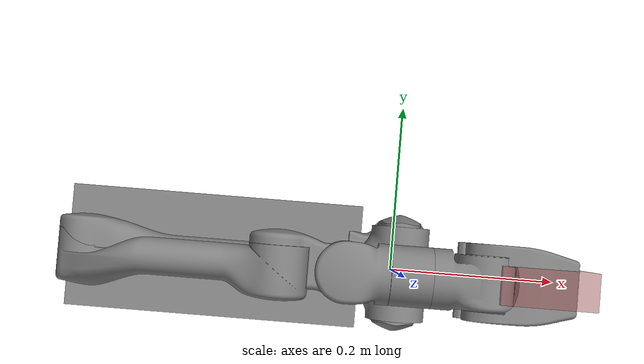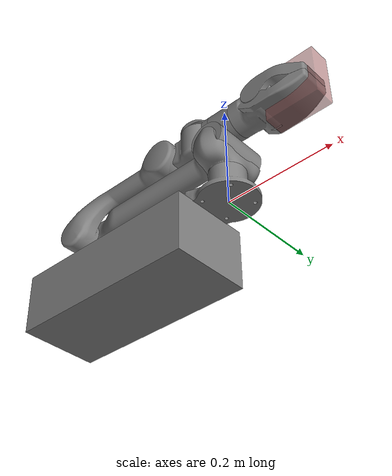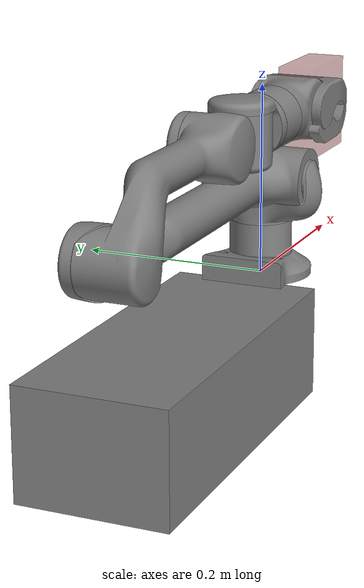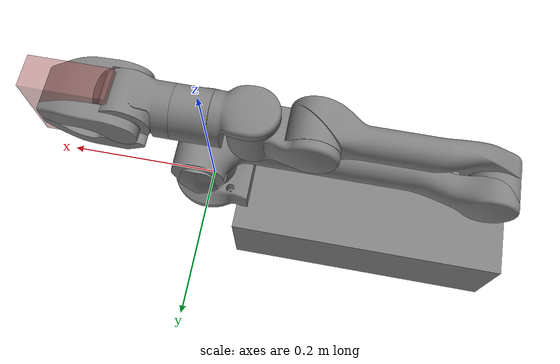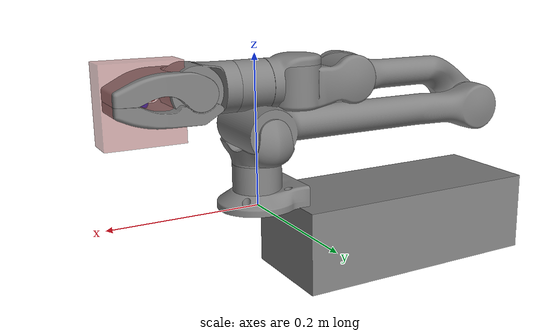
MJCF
<mujoco model="z1 scene">
  <include file="z1_floating.xml"/>

  <statistic center="0 0 0.1" extent="0.6"/>

  <visual>
    <headlight diffuse="0.6 0.6 0.6" ambient="0.3 0.3 0.3" specular="0 0 0"/>
    <rgba haze="0.15 0.25 0.35 1"/>
    <global azimuth="120" elevation="-20"/>
  </visual>

  <asset>
    <texture type="skybox" builtin="gradient" rgb1="0.3 0.5 0.7" rgb2="0 0 0" width="512" height="3072"/>
    <texture type="2d" name="groundplane" builtin="checker" mark="edge" rgb1="0.2 0.3 0.4" rgb2="0.1 0.2 0.3"
      markrgb="0.8 0.8 0.8" width="300" height="300"/>
    <material name="groundplane" texture="groundplane" texuniform="true" texrepeat="5 5" reflectance="0.2"/>
  </asset>

  <worldbody>
    <light pos="0 0 1.5" dir="0 0 -1" directional="true"/>

    <body name="target" pos="0.15 0. 0.15" quat="-0.5 0.5 0.5 0.5" mocap="true">
      <geom type="box" size=".05 .05 .02" contype="0" conaffinity="0" rgba=".6 .3 .3 .5"/>
      <site type="sphere" size="0.01" rgba="0 0 1 1" group="1"/>
    </body>

  </worldbody>
</mujoco>

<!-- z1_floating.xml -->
<mujoco model="z1">
  <compiler angle="radian" meshdir="assets"/>

  <option integrator="implicitfast"/>

  <default>
    <default class="z1">
      <joint damping="1" frictionloss="1"/>
      <general biastype="affine" gainprm="1000" biasprm="0 -1000 -100" forcerange="-30 30"/>
      <default class="visual">
        <geom type="mesh" group="2" contype="0" conaffinity="0"/>
      </default>
      <default class="collision">
        <geom type="cylinder" group="3" mass="0" density="0"/>
        <default class="z1_gripper_stator_collision">
          <geom pos="0.051 0 0" type="mesh"/>
        </default>
        <default class="z1_gripper_stator_pad_collision_1">
          <geom type="box" size="0.014 0.015 0.004" pos="0.186 -0.015 -0.0125"/>
        </default>
        <default class="z1_gripper_stator_pad_collision_2">
          <geom type="box" size="0.014 0.015 0.004" pos="0.186 0.015 -0.0125"/>
        </default>
        <default class="z1_gripper_mover_collision">
          <geom type="mesh"/>
        </default>
        <default class="z1_gripper_mover_pad_collision_1">
          <geom type="box" size="0.014 0.015 0.004" pos="0.086 -0.015 -0.0055"/>
        </default>
        <default class="z1_gripper_mover_pad_collision_2">
          <geom type="box" size="0.014 0.015 0.004" pos="0.086 0.015 -0.0055"/>
        </default>
      </default>
    </default>
  </default>

  <asset>
    <mesh file="z1_Link00.stl"/>
    <mesh file="z1_Link01.stl"/>
    <mesh file="z1_Link02.stl"/>
    <mesh file="z1_Link03.stl"/>
    <mesh file="z1_Link04.stl"/>
    <mesh file="z1_Link05.stl"/>
    <mesh file="z1_Link06.stl"/>
    <mesh file="z1_GripperStator.stl"/>
    <mesh file="z1_GripperStator_col_1.stl"/>
    <mesh file="z1_GripperStator_col_2.stl"/>
    <mesh file="z1_GripperStator_col_3.stl"/>
    <mesh file="z1_GripperStator_col_4.stl"/>
    <mesh file="z1_GripperStator_col_5.stl"/>
    <mesh file="z1_GripperStator_col_6.stl"/>
    <mesh file="z1_GripperMover.stl"/>
    <mesh file="z1_GripperMover_col_1.stl"/>
    <mesh file="z1_GripperMover_col_2.stl"/>
    <mesh file="z1_GripperMover_col_3.stl"/>
    <mesh file="z1_GripperMover_col_4.stl"/>
    <mesh file="z1_GripperMover_col_5.stl"/>
  </asset>

  <worldbody>
    <body name="link00" childclass="z1">
      <inertial pos="-0.00334984 -0.00013615 0.0249584" quat="-0.00692194 0.682592 0.00133293 0.730766" mass="0.472475"
        diaginertia="0.000531375 0.000415207 0.000378658"/>
      <geom class="visual" mesh="z1_Link00"/>
      <geom size="0.0325 0.0255" pos="0 0 0.0255" class="collision"/>

      <geom type="box" class="collision" size="0.18 0.075 0.056" name="trunk" pos="-0.22 0 -0.055"/>
      <geom type="box" class="visual" size="0.18 0.075 0.056" pos="-0.22 0 -0.055"/>

      <joint axis="0 1 0" name="basepitch" pos="0 0 0" type="hinge" range="-0.2 0.2"/>
      <joint axis="0 0 1" name="basez" pos="0 0 0" type="slide" range="-0.1 0.1"/>

      <body name="link01" pos="0 0 0.0585">
        <inertial pos="2.47e-06 -0.00025198 0.0231717" quat="0.708578 0.705633 0.000281462 -0.000355927" mass="0.673326"
          diaginertia="0.00128328 0.000839362 0.000719308"/>
        <joint name="joint1" axis="0 0 1" range="-2.61799 2.61799"/>
        <geom class="visual" mesh="z1_Link01"/>

        <body name="link02" pos="0 0 0.045">
          <inertial pos="-0.110126 0.00240029 0.00158266" quat="0.00748058 0.707092 -0.0114473 0.70699" mass="1.19132"
            diaginertia="0.0246612 0.0243113 0.00100468"/>
          <joint name="joint2" axis="0 1 0" range="0 2.96706" damping="2"/>
          <geom class="visual" mesh="z1_Link02"/>
          <geom size="0.0325 0.051" quat="1 1 0 0" class="collision" name="link02_geom1"/>
          <geom size="0.0225 0.1175" pos="-0.1625 0 0" quat="1 0 1 0" class="collision" name="link02_geom2"/>
          <geom size="0.0325 0.0255" pos="-0.35 0 0" quat="1 1 0 0" class="collision" name="link02_geom3"/>

          <body name="link03" pos="-0.35 0 0">
            <inertial pos="0.106092 -0.00541815 0.0347638" quat="0.540557 0.443575 0.426319 0.573839" mass="0.839409"
              diaginertia="0.00954365 0.00938711 0.000558432"/>
            <joint name="joint3" axis="0 1 0" range="-2.87979 0"/>
            <geom class="visual" mesh="z1_Link03"/>
            <geom size="0.02 0.058" pos="0.128 0 0.055" quat="1 0 1 0" class="collision" name="link03_geom1"/>
            <geom size="0.0325 0.0295" pos="0.2205 0 0.055" quat="0.5 -0.5 0.5 0.5" class="collision" name="link03_geom2"/>

            <body name="link04" pos="0.218 0 0.057">
              <inertial pos="0.0436668 0.00364738 -0.00170192" quat="0.0390835 0.726445 -0.0526787 0.684087"
                mass="0.564046" diaginertia="0.000981656 0.00094053 0.000302655"/>
              <joint name="joint4" axis="0 1 0" range="-1.51844 1.51844"/>
              <geom class="visual" mesh="z1_Link04"/>
              <geom size="0.0325 0.0335" pos="0.072 0 0" class="collision"/>

              <body name="link05" pos="0.07 0 0">
                <inertial pos="0.0312153 0 0.00646316" quat="0.462205 0.535209 0.53785 0.45895" mass="0.389385"
                  diaginertia="0.000558961 0.000547317 0.000167332"/>
                <joint name="joint5" axis="0 0 1" range="-1.3439 1.3439"/>
                <geom class="visual" mesh="z1_Link05"/>

                <body name="link06" pos="0.0492 0 0">
                  <inertial pos="0.0241569 -0.00017355 -0.00143876" quat="0.998779 0.0457735 -0.00663717 0.0173548"
                    mass="0.288758" diaginertia="0.00018333 0.000147464 0.000146786"/>
                  <joint name="joint6" axis="1 0 0" range="-2.79253 2.79253"/>
                  <geom class="visual" mesh="z1_Link06"/>
                  <geom size="0.0325 0.0255" pos="0.0255 0 0" quat="1 0 1 0" class="collision"/>
                  <site name="attachment_site" size="0.01" pos="0.15 0 0" quat="-1 1 1 1" rgba="1 0 0 1" group="1"/>

                  <geom pos="0.051 0 0" type="mesh" mesh="z1_GripperStator" class="visual"/>
                  <geom class="z1_gripper_stator_collision" mesh="z1_GripperStator_col_1"/>
                  <geom class="z1_gripper_stator_collision" mesh="z1_GripperStator_col_2"/>
                  <geom class="z1_gripper_stator_collision" mesh="z1_GripperStator_col_3"/>
                  <geom class="z1_gripper_stator_collision" mesh="z1_GripperStator_col_4"/>
                  <geom class="z1_gripper_stator_collision" mesh="z1_GripperStator_col_5"/>
                  <geom class="z1_gripper_stator_collision" mesh="z1_GripperStator_col_6"/>
                  <geom class="z1_gripper_stator_pad_collision_1"/>
                  <geom class="z1_gripper_stator_pad_collision_2"/>
                  <body name="gripperMover" pos="0.1 0 0">
                    <inertial pos="0.0132063 0.00476708 0.00380534" quat="0.0631093 0.669067 -0.0615783 0.737953"
                      mass="0.276213" diaginertia="0.000359044 0.000270888 0.000172378"/>

                    <geom type="mesh" mesh="z1_GripperMover" class="visual"/>
                    <geom class="z1_gripper_mover_collision" mesh="z1_GripperMover_col_1"/>
                    <geom class="z1_gripper_mover_collision" mesh="z1_GripperMover_col_2"/>
                    <geom class="z1_gripper_mover_collision" mesh="z1_GripperMover_col_3"/>
                    <geom class="z1_gripper_mover_collision" mesh="z1_GripperMover_col_4"/>
                    <geom class="z1_gripper_mover_collision" mesh="z1_GripperMover_col_5"/>
                    <geom class="z1_gripper_mover_pad_collision_1"/>
                    <geom class="z1_gripper_mover_pad_collision_2"/>
                  </body>
                </body>
              </body>
            </body>
          </body>
        </body>
      </body>
    </body>
  </worldbody>

  <actuator>
    <general class="z1" name="motor1" joint="joint1" ctrlrange="-2.61799 2.61799"/>
    <general class="z1" name="motor2" joint="joint2" ctrlrange="0 2.96706" forcerange="-60 60" gainprm="1500"
      biasprm="0 -1500 -150"/>
    <general class="z1" name="motor3" joint="joint3" ctrlrange="-2.87979 0"/>
    <general class="z1" name="motor4" joint="joint4" ctrlrange="-1.51844 1.51844"/>
    <general class="z1" name="motor5" joint="joint5" ctrlrange="-1.3439 1.3439"/>
    <general class="z1" name="motor6" joint="joint6" ctrlrange="-2.79253 2.79253"/>
  </actuator>

  <keyframe>
    <key name="home" qpos="0 0. -0. -0. 0 0 0 0" ctrl="0 0. -0. -0. 0 0"/>
  </keyframe>
</mujoco>
